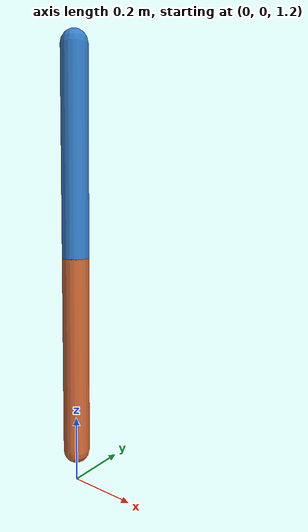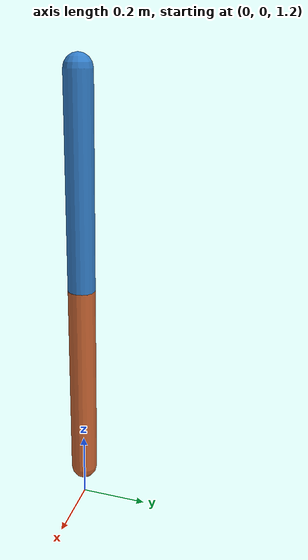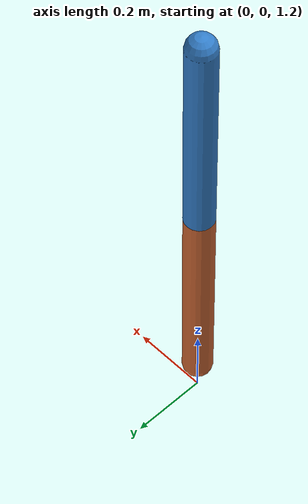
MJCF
<mujoco model="double_pendulum_muscle">
  <compiler angle="radian" coordinate="local"/>

  <option timestep="0.002" gravity="0 0 9.81" integrator="RK4"/>

  <visual>
    <headlight diffuse="0.8 0.8 0.8" ambient="0.2 0.2 0.2" specular="0 0 0"/>
  </visual>

  <default>
    <joint limited="false" damping="0.10"/>
    <geom type="capsule" friction="1 0.1 0.1" density="800"/>
  </default>

  <worldbody>
    <light pos="0 0 3"/>
    <geom name="ground" type="plane" size="2 2 0.1" rgba="0.92 0.92 0.92 1"/>
    <camera name="main" pos="2.2 -2.2 1.8" xyaxes="0.7 0.7 0  -0.3 0.3 0.9"/>

    <body name="base" pos="0 0 2.5">
      <site name="pivot" pos="0 0 0" size="0.01" rgba="0 0 0 1"/>
      <!-- Attachment site on the fixed base (for hinge1 muscle). -->
      <site name="m1_base" pos="0.03 0 0.0" size="0.006" rgba="0 0 0 1"/>

      <body name="link1">
        <joint name="hinge1" type="hinge" axis="0 2 0"/>
        <geom name="rod1" fromto="0 0 0  0 0 -0.6" size="0.04" rgba="0.2 0.5 0.8 1"/>

        <!-- Attachment sites for a simple 1-DOF muscle across hinge1 -->
        <site name="m1_link1" pos="0.03 0 -0.22" size="0.006" rgba="0 0 0 1"/>

        <!-- Attachment site on link1 near the elbow (for hinge2 muscle). -->
        <site name="m2_link1" pos="0.03 0 -0.60" size="0.006" rgba="0 0 0 1"/>

        <body name="link2" pos="0 0 -0.6">
          <joint name="hinge2" type="hinge" axis="0 2 0"/>
          <geom name="rod2" fromto="0 0 0  0 0 -0.6" size="0.04" rgba="0.8 0.4 0.2 1"/>

          <!-- Attachment sites for a simple 1-DOF muscle across hinge2 -->
          <site name="m2_link2" pos="0.03 0 -0.22" size="0.006" rgba="0 0 0 1"/>
        </body>
      </body>
    </body>
  </worldbody>

  <tendon>
    <!-- Minimal spatial tendons (straight line) spanning each hinge. -->
    <spatial name="tendon1" width="0.004" rgba="0.2 0.7 0.2 1">
      <site site="m1_base"/>
      <site site="m1_link1"/>
    </spatial>
    <spatial name="tendon2" width="0.004" rgba="0.2 0.7 0.2 1">
      <site site="m2_link1"/>
      <site site="m2_link2"/>
    </spatial>
  </tendon>

  <actuator>
    <!-- Simple muscle actuators; control in [0,1] is activation. -->
    <!-- Let MuJoCo derive a valid length range from the tendon and geometry. -->
    <muscle name="muscle1" tendon="tendon1" ctrlrange="0 1" timeconst="0.01 0.04"/>
    <muscle name="muscle2" tendon="tendon2" ctrlrange="0 1" timeconst="0.01 0.04"/>
  </actuator>
</mujoco>
